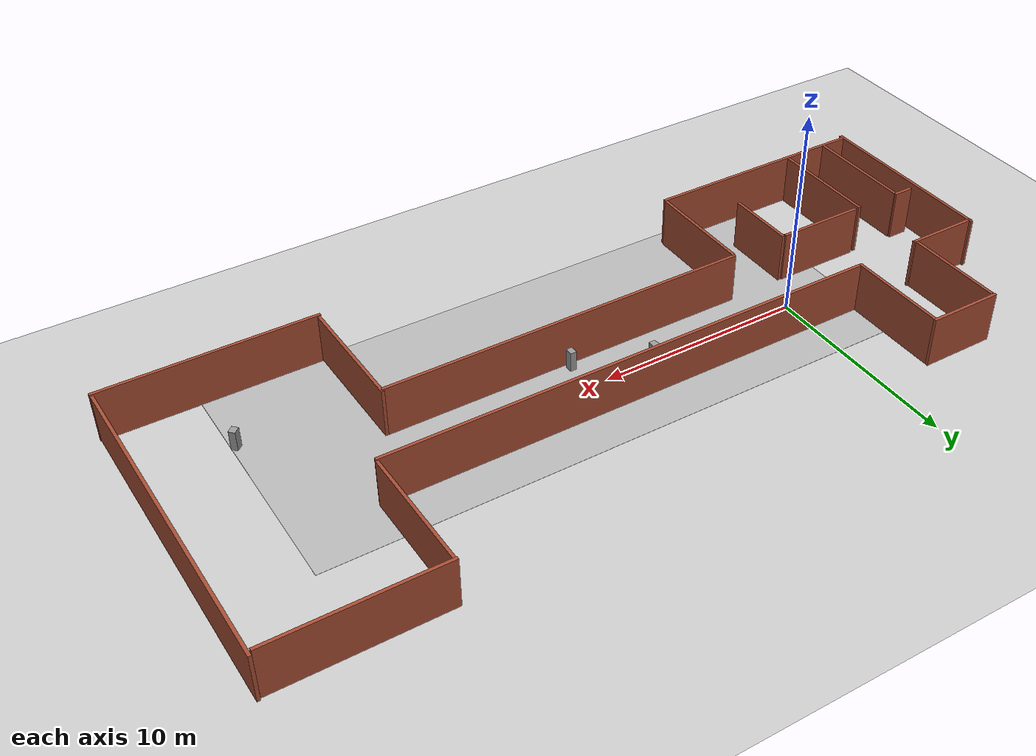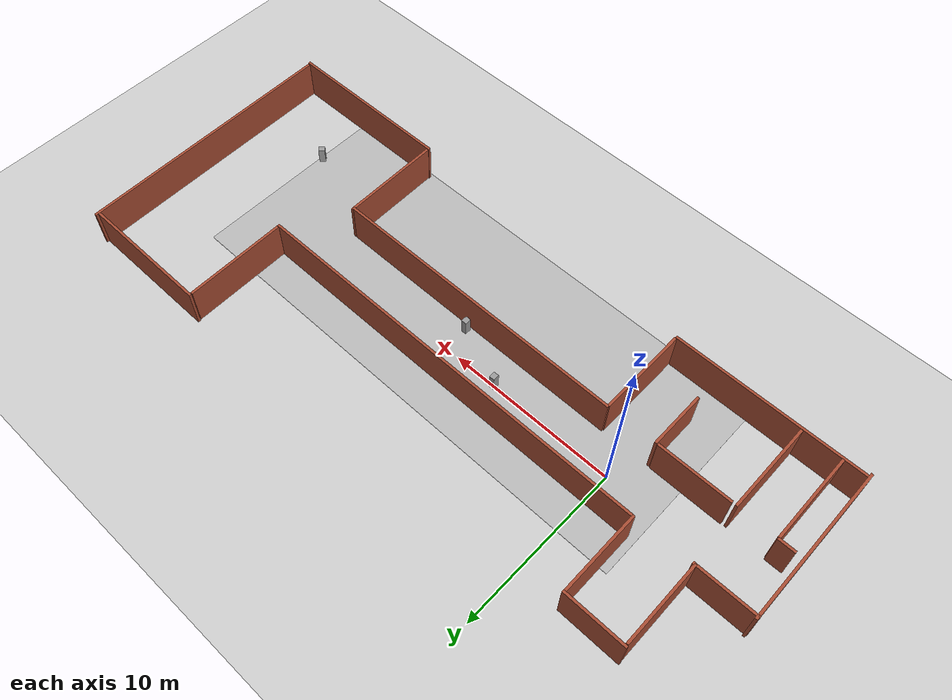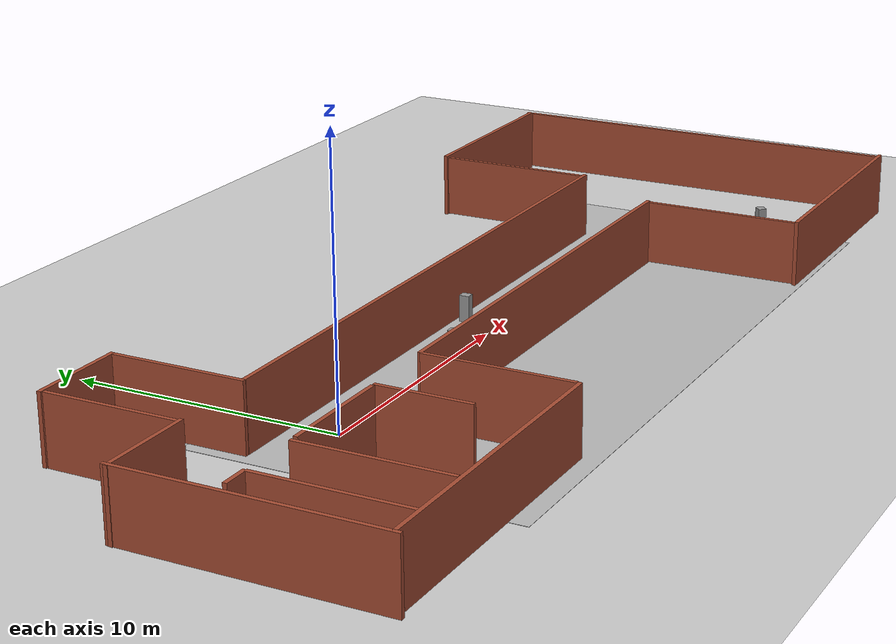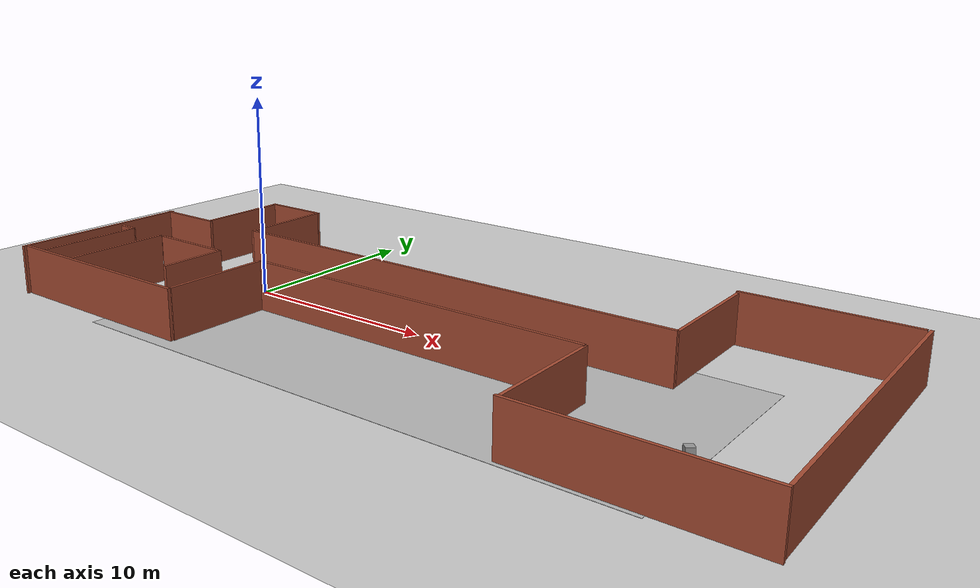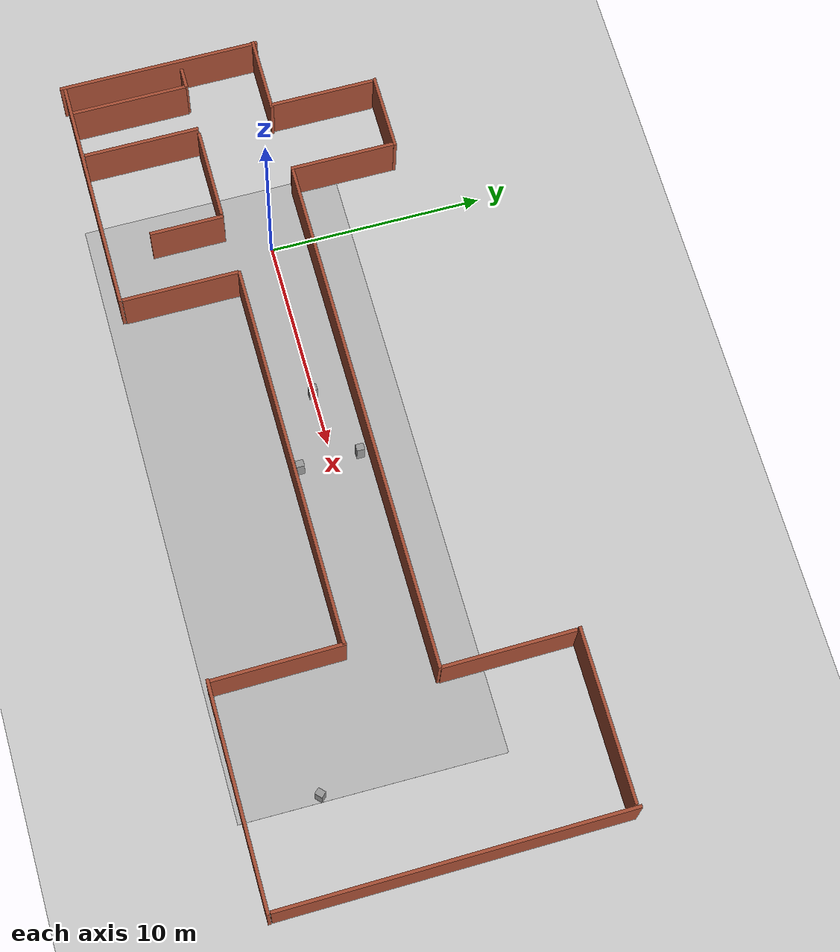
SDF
<sdf version="1.7">
 <world name="default">
  <light name="sun" type="directional">
   <pose>0 0 10 0 -0 0</pose>
   <diffuse>0.8 0.8 0.8 1</diffuse>
   <specular>0.1 0.1 0.1 1</specular>
   <attenuation>
    <range>1000</range>
    <constant>0.9</constant>
    <linear>0.01</linear>
    <quadratic>0.001</quadratic>
   </attenuation>
   <direction>-0.5 0.5 -1</direction>
   <spot><inner_angle>0</inner_angle><outer_angle>0</outer_angle><falloff>0</falloff></spot>
  </light>
  <model name="ground_plane">
   <static>1</static>
   <link name="link">
    <collision name="collision">
     <geometry><plane><normal>0 0 1</normal><size>100 100</size></plane></geometry>
     <surface><friction><ode><mu>100</mu><mu2>50</mu2></ode></friction></surface>
    </collision>
    <visual name="visual">
     <cast_shadows>0</cast_shadows>
     <geometry><plane><normal>0 0 1</normal><size>100 100</size></plane></geometry>
     <material>
      <script><uri>file://media/materials/scripts/gazebo.material</uri><name>Gazebo/Grey</name></script>
     </material>
    </visual>
   </link>
  </model>
  <gravity>0 0 -9.8</gravity>
  <magnetic_field>6e-06 2.3e-05 -4.2e-05</magnetic_field>
  <atmosphere type="adiabatic"/>
  <physics name="default_physics" default="0" type="ode">
   <max_step_size>0.001</max_step_size>
   <real_time_factor>1</real_time_factor>
   <real_time_update_rate>1000</real_time_update_rate>
  </physics>
  <scene><ambient>0.4 0.4 0.4 1</ambient><background>0.7 0.7 0.7 1</background><shadows>1</shadows></scene>
  <spherical_coordinates>
   <surface_model>EARTH_WGS84</surface_model>
   <latitude_deg>0</latitude_deg>
   <longitude_deg>0</longitude_deg>
   <elevation>0</elevation>
   <heading_deg>0</heading_deg>
  </spherical_coordinates>
  <audio><device>default</device></audio>
  <model name="my_ground_plane_0">
   <static>1</static>
   <link name="link">
    <collision name="collision">
     <geometry><plane><normal>0 0 1</normal><size>28.8 12</size></plane></geometry>
     <surface><friction><ode><mu>100</mu><mu2>50</mu2></ode></friction></surface>
    </collision>
    <visual name="visual">
     <cast_shadows>0</cast_shadows>
     <geometry><plane><normal>0 0 1</normal><size>28.8 12</size></plane></geometry>
     <material>
      <script>
       <uri>model://my_ground_plane/materials/scripts</uri>
       <uri>model://my_ground_plane/materials/textures/</uri>
       <name>MyGroundPlane/Image</name>
      </script>
     </material>
    </visual>
   </link>
   <pose>11.2785 -2.18868 0 0 -0 0</pose>
  </model>
  <light name="user_directional_light_0" type="directional">
   <pose>11.0345 -13.0266 1 0 -0 0</pose>
   <diffuse>0.5 0.5 0.5 1</diffuse>
   <specular>0.1 0.1 0.1 1</specular>
   <direction>0.1 0.1 -0.9</direction>
   <attenuation>
    <range>20</range>
    <constant>0.5</constant>
    <linear>0.01</linear>
    <quadratic>0.001</quadratic>
   </attenuation>
   <spot><inner_angle>0</inner_angle><outer_angle>0</outer_angle><falloff>0</falloff></spot>
  </light>
  <light name="user_directional_light_1" type="directional">
   <pose>11.0023 9.1288 1 0 -0 0</pose>
   <diffuse>0.5 0.5 0.5 1</diffuse>
   <specular>0.1 0.1 0.1 1</specular>
   <direction>0.1 0.1 -0.9</direction>
   <attenuation>
    <range>20</range>
    <constant>0.5</constant>
    <linear>0.01</linear>
    <quadratic>0.001</quadratic>
   </attenuation>
   <spot><inner_angle>0</inner_angle><outer_angle>0</outer_angle><falloff>0</falloff></spot>
  </light>
  <model name="first_box_0">
   <link name="link">
    <inertial>
     <mass>0.118815</mass>
     <inertia>
      <ixx>0.011267</ixx>
      <ixy>0</ixy>
      <ixz>0</ixz>
      <iyy>0.0109849</iyy>
      <iyz>0</iyz>
      <izz>0.00244943</izz>
     </inertia>
    </inertial>
    <visual name="visual">
     <geometry><box><size>0.319958 0.371401 1</size></box></geometry>
     <material>
      <script><name>Gazebo/Grey</name><uri>file://media/materials/scripts/gazebo.material</uri></script>
      <shader type="pixel"><normal_map>__default__</normal_map></shader>
     </material>
    </visual>
    <collision name="collision">
     <geometry><box><size>0.330829 0.371401 1</size></box></geometry>
     <surface>
      <friction>
       <ode><mu>1</mu><mu2>1</mu2><fdir1>0 0 0</fdir1><slip1>0</slip1><slip2>0</slip2></ode>
       <torsional>
        <coefficient>1</coefficient>
        <patch_radius>0</patch_radius>
        <surface_radius>0</surface_radius>
        <use_patch_radius>1</use_patch_radius>
        <ode><slip>0</slip></ode>
       </torsional>
      </friction>
      <bounce><restitution_coefficient>0</restitution_coefficient><threshold>1e+06</threshold></bounce>
      <contact>
       <collide_without_contact>0</collide_without_contact>
       <collide_without_contact_bitmask>1</collide_without_contact_bitmask>
       <collide_bitmask>1</collide_bitmask>
       <ode>
        <soft_cfm>0</soft_cfm>
        <soft_erp>0.2</soft_erp>
        <kp>1e+13</kp>
        <kd>1</kd>
        <max_vel>0.01</max_vel>
        <min_depth>0</min_depth>
       </ode>
       <bullet>
        <split_impulse>1</split_impulse>
        <split_impulse_penetration_threshold>-0.01</split_impulse_penetration_threshold>
        <soft_cfm>0</soft_cfm>
        <soft_erp>0.2</soft_erp>
        <kp>1e+13</kp>
        <kd>1</kd>
       </bullet>
      </contact>
     </surface>
    </collision>
   </link>
   <static>0</static>
   <pose>7.54336 -0.032329 0.500001 -5e-06 -1e-06 0.000195</pose>
  </model>
  <model name="first_box_0_clone">
   <link name="link">
    <inertial>
     <mass>0.118815</mass>
     <inertia>
      <ixx>0.011267</ixx>
      <ixy>0</ixy>
      <ixz>0</ixz>
      <iyy>0.0109849</iyy>
      <iyz>0</iyz>
      <izz>0.00244943</izz>
     </inertia>
    </inertial>
    <visual name="visual">
     <geometry><box><size>0.319958 0.371401 1</size></box></geometry>
     <material>
      <script><name>Gazebo/Grey</name><uri>file://media/materials/scripts/gazebo.material</uri></script>
      <shader type="pixel"><normal_map>__default__</normal_map></shader>
     </material>
    </visual>
    <collision name="collision">
     <geometry><box><size>0.330829 0.371401 1</size></box></geometry>
     <surface>
      <friction>
       <ode><mu>1</mu><mu2>1</mu2><fdir1>0 0 0</fdir1><slip1>0</slip1><slip2>0</slip2></ode>
       <torsional>
        <coefficient>1</coefficient>
        <patch_radius>0</patch_radius>
        <surface_radius>0</surface_radius>
        <use_patch_radius>1</use_patch_radius>
        <ode><slip>0</slip></ode>
       </torsional>
      </friction>
      <bounce><restitution_coefficient>0</restitution_coefficient><threshold>1e+06</threshold></bounce>
      <contact>
       <collide_without_contact>0</collide_without_contact>
       <collide_without_contact_bitmask>1</collide_without_contact_bitmask>
       <collide_bitmask>1</collide_bitmask>
       <ode>
        <soft_cfm>0</soft_cfm>
        <soft_erp>0.2</soft_erp>
        <kp>1e+13</kp>
        <kd>1</kd>
        <max_vel>0.01</max_vel>
        <min_depth>0</min_depth>
       </ode>
       <bullet>
        <split_impulse>1</split_impulse>
        <split_impulse_penetration_threshold>-0.01</split_impulse_penetration_threshold>
        <soft_cfm>0</soft_cfm>
        <soft_erp>0.2</soft_erp>
        <kp>1e+13</kp>
        <kd>1</kd>
       </bullet>
      </contact>
     </surface>
    </collision>
   </link>
   <static>0</static>
   <pose>10.8644 1.26843 0.5 -1e-06 0 0.000209</pose>
  </model>
  <model name="first_box_0_clone_0">
   <link name="link">
    <inertial>
     <mass>0.118815</mass>
     <inertia>
      <ixx>0.011267</ixx>
      <ixy>0</ixy>
      <ixz>0</ixz>
      <iyy>0.0109849</iyy>
      <iyz>0</iyz>
      <izz>0.00244943</izz>
     </inertia>
    </inertial>
    <visual name="visual">
     <geometry><box><size>0.319958 0.371401 1</size></box></geometry>
     <material>
      <script><name>Gazebo/Grey</name><uri>file://media/materials/scripts/gazebo.material</uri></script>
      <shader type="pixel"><normal_map>__default__</normal_map></shader>
     </material>
    </visual>
    <collision name="collision">
     <geometry><box><size>0.330829 0.371401 1</size></box></geometry>
     <surface>
      <friction>
       <ode><mu>1</mu><mu2>1</mu2><fdir1>0 0 0</fdir1><slip1>0</slip1><slip2>0</slip2></ode>
       <torsional>
        <coefficient>1</coefficient>
        <patch_radius>0</patch_radius>
        <surface_radius>0</surface_radius>
        <use_patch_radius>1</use_patch_radius>
        <ode><slip>0</slip></ode>
       </torsional>
      </friction>
      <bounce><restitution_coefficient>0</restitution_coefficient><threshold>1e+06</threshold></bounce>
      <contact>
       <collide_without_contact>0</collide_without_contact>
       <collide_without_contact_bitmask>1</collide_without_contact_bitmask>
       <collide_bitmask>1</collide_bitmask>
       <ode>
        <soft_cfm>0</soft_cfm>
        <soft_erp>0.2</soft_erp>
        <kp>1e+13</kp>
        <kd>1</kd>
        <max_vel>0.01</max_vel>
        <min_depth>0</min_depth>
       </ode>
       <bullet>
        <split_impulse>1</split_impulse>
        <split_impulse_penetration_threshold>-0.01</split_impulse_penetration_threshold>
        <soft_cfm>0</soft_cfm>
        <soft_erp>0.2</soft_erp>
        <kp>1e+13</kp>
        <kd>1</kd>
       </bullet>
      </contact>
     </surface>
    </collision>
   </link>
   <static>0</static>
   <pose>10.9218 -1.53465 0.499999 4e-06 1e-06 0.00011</pose>
  </model>
  <model name="first_box_0_clone_1">
   <link name="link">
    <inertial>
     <mass>0.118815</mass>
     <inertia>
      <ixx>0.011267</ixx>
      <ixy>0</ixy>
      <ixz>0</ixz>
      <iyy>0.0109849</iyy>
      <iyz>0</iyz>
      <izz>0.00244943</izz>
     </inertia>
    </inertial>
    <visual name="visual">
     <geometry><box><size>0.319958 0.371401 1</size></box></geometry>
     <material>
      <script><name>Gazebo/Grey</name><uri>file://media/materials/scripts/gazebo.material</uri></script>
      <shader type="pixel"><normal_map>__default__</normal_map></shader>
     </material>
    </visual>
    <collision name="collision">
     <geometry><box><size>0.330829 0.371401 1</size></box></geometry>
     <surface>
      <friction>
       <ode><mu>1</mu><mu2>1</mu2><fdir1>0 0 0</fdir1><slip1>0</slip1><slip2>0</slip2></ode>
       <torsional>
        <coefficient>1</coefficient>
        <patch_radius>0</patch_radius>
        <surface_radius>0</surface_radius>
        <use_patch_radius>1</use_patch_radius>
        <ode><slip>0</slip></ode>
       </torsional>
      </friction>
      <bounce><restitution_coefficient>0</restitution_coefficient><threshold>1e+06</threshold></bounce>
      <contact>
       <collide_without_contact>0</collide_without_contact>
       <collide_without_contact_bitmask>1</collide_without_contact_bitmask>
       <collide_bitmask>1</collide_bitmask>
       <ode>
        <soft_cfm>0</soft_cfm>
        <soft_erp>0.2</soft_erp>
        <kp>1e+13</kp>
        <kd>1</kd>
        <max_vel>0.01</max_vel>
        <min_depth>0</min_depth>
       </ode>
       <bullet>
        <split_impulse>1</split_impulse>
        <split_impulse_penetration_threshold>-0.01</split_impulse_penetration_threshold>
        <soft_cfm>0</soft_cfm>
        <soft_erp>0.2</soft_erp>
        <kp>1e+13</kp>
        <kd>1</kd>
       </bullet>
      </contact>
     </surface>
    </collision>
   </link>
   <static>0</static>
   <pose>25.4581 -4.48846 0.499997 2e-06 2e-06 -0.814201</pose>
  </model>
  <model name="SOC">
   <link name="Wall_10">
    <pose>-1.03849 0.704536 0 0 -0 0</pose>
    <inertial>
     <inertia><ixx>0</ixx><ixy>0</ixy><ixz>0</ixz><iyy>0</iyy><iyz>0</iyz><izz>0</izz></inertia>
     <mass>0</mass>
    </inertial>
    <visual name="Wall_10_Visual">
     <pose>0 0 1.25 0 -0 0</pose>
     <geometry><box><size>18.0615 0.15 2.5</size></box></geometry>
     <material>
      <script><uri>file://media/materials/scripts/gazebo.material</uri><name>Gazebo/Bricks</name></script>
      <ambient>1 1 1 1</ambient>
      <shader type="pixel"/>
     </material>
     <meta><layer>0</layer></meta>
    </visual>
    <collision name="Wall_10_Collision">
     <pose>0 0 1.25 0 -0 0</pose>
     <geometry><box><size>18.0615 0.15 2.5</size></box></geometry>
     <surface>
      <friction>
       <ode><mu>1</mu><mu2>1</mu2><fdir1>0 0 0</fdir1><slip1>0</slip1><slip2>0</slip2></ode>
       <torsional>
        <coefficient>1</coefficient>
        <patch_radius>0</patch_radius>
        <surface_radius>0</surface_radius>
        <use_patch_radius>1</use_patch_radius>
        <ode><slip>0</slip></ode>
       </torsional>
      </friction>
      <bounce><restitution_coefficient>0</restitution_coefficient><threshold>1e+06</threshold></bounce>
      <contact>
       <collide_without_contact>0</collide_without_contact>
       <collide_without_contact_bitmask>1</collide_without_contact_bitmask>
       <collide_bitmask>1</collide_bitmask>
       <ode>
        <soft_cfm>0</soft_cfm>
        <soft_erp>0.2</soft_erp>
        <kp>1e+13</kp>
        <kd>1</kd>
        <max_vel>0.01</max_vel>
        <min_depth>0</min_depth>
       </ode>
       <bullet>
        <split_impulse>1</split_impulse>
        <split_impulse_penetration_threshold>-0.01</split_impulse_penetration_threshold>
        <soft_cfm>0</soft_cfm>
        <soft_erp>0.2</soft_erp>
        <kp>1e+13</kp>
        <kd>1</kd>
       </bullet>
      </contact>
     </surface>
    </collision>
   </link>
   <link name="Wall_10_clone">
    <pose>-15.6498 -4.82376 0 0 -0 0</pose>
    <inertial>
     <inertia><ixx>0</ixx><ixy>0</ixy><ixz>0</ixz><iyy>0</iyy><iyz>0</iyz><izz>0</izz></inertia>
     <mass>0</mass>
    </inertial>
    <visual name="Wall_10_Visual">
     <pose>0 0 1.25 0 -0 0</pose>
     <geometry><box><size>11.2779 0.15 2.5</size></box></geometry>
     <material>
      <script><uri>file://media/materials/scripts/gazebo.material</uri><name>Gazebo/Bricks</name></script>
      <ambient>1 1 1 1</ambient>
      <shader type="pixel"/>
     </material>
     <meta><layer>0</layer></meta>
    </visual>
    <collision name="Wall_10_Collision">
     <pose>0 0 1.25 0 -0 0</pose>
     <geometry><box><size>11.2779 0.15 2.5</size></box></geometry>
     <surface>
      <friction>
       <ode><mu>1</mu><mu2>1</mu2><fdir1>0 0 0</fdir1><slip1>0</slip1><slip2>0</slip2></ode>
       <torsional>
        <coefficient>1</coefficient>
        <patch_radius>0</patch_radius>
        <surface_radius>0</surface_radius>
        <use_patch_radius>1</use_patch_radius>
        <ode><slip>0</slip></ode>
       </torsional>
      </friction>
      <bounce><restitution_coefficient>0</restitution_coefficient><threshold>1e+06</threshold></bounce>
      <contact>
       <collide_without_contact>0</collide_without_contact>
       <collide_without_contact_bitmask>1</collide_without_contact_bitmask>
       <collide_bitmask>1</collide_bitmask>
       <ode>
        <soft_cfm>0</soft_cfm>
        <soft_erp>0.2</soft_erp>
        <kp>1e+13</kp>
        <kd>1</kd>
        <max_vel>0.01</max_vel>
        <min_depth>0</min_depth>
       </ode>
       <bullet>
        <split_impulse>1</split_impulse>
        <split_impulse_penetration_threshold>-0.01</split_impulse_penetration_threshold>
        <soft_cfm>0</soft_cfm>
        <soft_erp>0.2</soft_erp>
        <kp>1e+13</kp>
        <kd>1</kd>
       </bullet>
      </contact>
     </surface>
    </collision>
   </link>
   <link name="Wall_10_clone_clone">
    <pose>-15.212 0.646337 0 0 -0 0</pose>
    <inertial>
     <inertia><ixx>0</ixx><ixy>0</ixy><ixz>0</ixz><iyy>0</iyy><iyz>0</iyz><izz>0</izz></inertia>
     <mass>0</mass>
    </inertial>
    <visual name="Wall_10_Visual">
     <pose>0 0 1.25 0 -0 0</pose>
     <geometry><box><size>4.31507 0.15 2.5</size></box></geometry>
     <material>
      <script><uri>file://media/materials/scripts/gazebo.material</uri><name>Gazebo/Bricks</name></script>
      <ambient>1 1 1 1</ambient>
      <shader type="pixel"/>
     </material>
     <meta><layer>0</layer></meta>
    </visual>
    <collision name="Wall_10_Collision">
     <pose>0 0 1.25 0 -0 0</pose>
     <geometry><box><size>4.31507 0.15 2.5</size></box></geometry>
     <surface>
      <friction>
       <ode><mu>1</mu><mu2>1</mu2><fdir1>0 0 0</fdir1><slip1>0</slip1><slip2>0</slip2></ode>
       <torsional>
        <coefficient>1</coefficient>
        <patch_radius>0</patch_radius>
        <surface_radius>0</surface_radius>
        <use_patch_radius>1</use_patch_radius>
        <ode><slip>0</slip></ode>
       </torsional>
      </friction>
      <bounce><restitution_coefficient>0</restitution_coefficient><threshold>1e+06</threshold></bounce>
      <contact>
       <collide_without_contact>0</collide_without_contact>
       <collide_without_contact_bitmask>1</collide_without_contact_bitmask>
       <collide_bitmask>1</collide_bitmask>
       <ode>
        <soft_cfm>0</soft_cfm>
        <soft_erp>0.2</soft_erp>
        <kp>1e+13</kp>
        <kd>1</kd>
        <max_vel>0.01</max_vel>
        <min_depth>0</min_depth>
       </ode>
       <bullet>
        <split_impulse>1</split_impulse>
        <split_impulse_penetration_threshold>-0.01</split_impulse_penetration_threshold>
        <soft_cfm>0</soft_cfm>
        <soft_erp>0.2</soft_erp>
        <kp>1e+13</kp>
        <kd>1</kd>
       </bullet>
      </contact>
     </surface>
    </collision>
   </link>
   <link name="Wall_10_clone_clone_clone">
    <pose>-20.376 0.6718 0 0 -0 0</pose>
    <inertial>
     <inertia><ixx>0</ixx><ixy>0</ixy><ixz>0</ixz><iyy>0</iyy><iyz>0</iyz><izz>0</izz></inertia>
     <mass>0</mass>
    </inertial>
    <visual name="Wall_10_Visual">
     <pose>0 0 1.25 0 -0 0</pose>
     <geometry><box><size>0.991707 0.15 2.5</size></box></geometry>
     <material>
      <script><uri>file://media/materials/scripts/gazebo.material</uri><name>Gazebo/Bricks</name></script>
      <ambient>1 1 1 1</ambient>
      <shader type="pixel"/>
     </material>
     <meta><layer>0</layer></meta>
    </visual>
    <collision name="Wall_10_Collision">
     <pose>0 0 1.25 0 -0 0</pose>
     <geometry><box><size>0.991707 0.15 2.5</size></box></geometry>
     <surface>
      <friction>
       <ode><mu>1</mu><mu2>1</mu2><fdir1>0 0 0</fdir1><slip1>0</slip1><slip2>0</slip2></ode>
       <torsional>
        <coefficient>1</coefficient>
        <patch_radius>0</patch_radius>
        <surface_radius>0</surface_radius>
        <use_patch_radius>1</use_patch_radius>
        <ode><slip>0</slip></ode>
       </torsional>
      </friction>
      <bounce><restitution_coefficient>0</restitution_coefficient><threshold>1e+06</threshold></bounce>
      <contact>
       <collide_without_contact>0</collide_without_contact>
       <collide_without_contact_bitmask>1</collide_without_contact_bitmask>
       <collide_bitmask>1</collide_bitmask>
       <ode>
        <soft_cfm>0</soft_cfm>
        <soft_erp>0.2</soft_erp>
        <kp>1e+13</kp>
        <kd>1</kd>
        <max_vel>0.01</max_vel>
        <min_depth>0</min_depth>
       </ode>
       <bullet>
        <split_impulse>1</split_impulse>
        <split_impulse_penetration_threshold>-0.01</split_impulse_penetration_threshold>
        <soft_cfm>0</soft_cfm>
        <soft_erp>0.2</soft_erp>
        <kp>1e+13</kp>
        <kd>1</kd>
       </bullet>
      </contact>
     </surface>
    </collision>
   </link>
   <link name="Wall_10_clone_clone_clone_0">
    <pose>-2.16879 4.3569 0 0 -0 0</pose>
    <inertial>
     <inertia><ixx>0</ixx><ixy>0</ixy><ixz>0</ixz><iyy>0</iyy><iyz>0</iyz><izz>0</izz></inertia>
     <mass>0</mass>
    </inertial>
    <visual name="Wall_10_Visual">
     <pose>0 0 1.25 0 -0 0</pose>
     <geometry><box><size>24.5035 0.15 2.5</size></box></geometry>
     <material>
      <script><uri>file://media/materials/scripts/gazebo.material</uri><name>Gazebo/Bricks</name></script>
      <ambient>1 1 1 1</ambient>
      <shader type="pixel"/>
     </material>
     <meta><layer>0</layer></meta>
    </visual>
    <collision name="Wall_10_Collision">
     <pose>0 0 1.25 0 -0 0</pose>
     <geometry><box><size>24.5035 0.15 2.5</size></box></geometry>
     <surface>
      <friction>
       <ode><mu>1</mu><mu2>1</mu2><fdir1>0 0 0</fdir1><slip1>0</slip1><slip2>0</slip2></ode>
       <torsional>
        <coefficient>1</coefficient>
        <patch_radius>0</patch_radius>
        <surface_radius>0</surface_radius>
        <use_patch_radius>1</use_patch_radius>
        <ode><slip>0</slip></ode>
       </torsional>
      </friction>
      <bounce><restitution_coefficient>0</restitution_coefficient><threshold>1e+06</threshold></bounce>
      <contact>
       <collide_without_contact>0</collide_without_contact>
       <collide_without_contact_bitmask>1</collide_without_contact_bitmask>
       <collide_bitmask>1</collide_bitmask>
       <ode>
        <soft_cfm>0</soft_cfm>
        <soft_erp>0.2</soft_erp>
        <kp>1e+13</kp>
        <kd>1</kd>
        <max_vel>0.01</max_vel>
        <min_depth>0</min_depth>
       </ode>
       <bullet>
        <split_impulse>1</split_impulse>
        <split_impulse_penetration_threshold>-0.01</split_impulse_penetration_threshold>
        <soft_cfm>0</soft_cfm>
        <soft_erp>0.2</soft_erp>
        <kp>1e+13</kp>
        <kd>1</kd>
       </bullet>
      </contact>
     </surface>
    </collision>
   </link>
   <link name="Wall_10_clone_clone_clone_1">
    <pose>-16.2134 9.24716 0 0 -0 0</pose>
    <inertial>
     <inertia><ixx>0</ixx><ixy>0</ixy><ixz>0</ixz><iyy>0</iyy><iyz>0</iyz><izz>0</izz></inertia>
     <mass>0</mass>
    </inertial>
    <visual name="Wall_10_Visual">
     <pose>0 0 1.25 0 -0 0</pose>
     <geometry><box><size>3.62714 0.15 2.5</size></box></geometry>
     <material>
      <script><uri>file://media/materials/scripts/gazebo.material</uri><name>Gazebo/Bricks</name></script>
      <ambient>1 1 1 1</ambient>
      <shader type="pixel"/>
     </material>
     <meta><layer>0</layer></meta>
    </visual>
    <collision name="Wall_10_Collision">
     <pose>0 0 1.25 0 -0 0</pose>
     <geometry><box><size>3.62714 0.15 2.5</size></box></geometry>
     <surface>
      <friction>
       <ode><mu>1</mu><mu2>1</mu2><fdir1>0 0 0</fdir1><slip1>0</slip1><slip2>0</slip2></ode>
       <torsional>
        <coefficient>1</coefficient>
        <patch_radius>0</patch_radius>
        <surface_radius>0</surface_radius>
        <use_patch_radius>1</use_patch_radius>
        <ode><slip>0</slip></ode>
       </torsional>
      </friction>
      <bounce><restitution_coefficient>0</restitution_coefficient><threshold>1e+06</threshold></bounce>
      <contact>
       <collide_without_contact>0</collide_without_contact>
       <collide_without_contact_bitmask>1</collide_without_contact_bitmask>
       <collide_bitmask>1</collide_bitmask>
       <ode>
        <soft_cfm>0</soft_cfm>
        <soft_erp>0.2</soft_erp>
        <kp>1e+13</kp>
        <kd>1</kd>
        <max_vel>0.01</max_vel>
        <min_depth>0</min_depth>
       </ode>
       <bullet>
        <split_impulse>1</split_impulse>
        <split_impulse_penetration_threshold>-0.01</split_impulse_penetration_threshold>
        <soft_cfm>0</soft_cfm>
        <soft_erp>0.2</soft_erp>
        <kp>1e+13</kp>
        <kd>1</kd>
       </bullet>
      </contact>
     </surface>
    </collision>
   </link>
   <link name="Wall_10_clone_clone_clone_1_clone">
    <pose>-19.5868 4.25073 0 0 -0 0</pose>
    <inertial>
     <inertia><ixx>0</ixx><ixy>0</ixy><ixz>0</ixz><iyy>0</iyy><iyz>0</iyz><izz>0</izz></inertia>
     <mass>0</mass>
    </inertial>
    <visual name="Wall_10_Visual">
     <pose>0 0 1.25 0 -0 0</pose>
     <geometry><box><size>3.62714 0.15 2.5</size></box></geometry>
     <material>
      <script><uri>file://media/materials/scripts/gazebo.material</uri><name>Gazebo/Bricks</name></script>
      <ambient>1 1 1 1</ambient>
      <shader type="pixel"/>
     </material>
     <meta><layer>0</layer></meta>
    </visual>
    <collision name="Wall_10_Collision">
     <pose>0 0 1.25 0 -0 0</pose>
     <geometry><box><size>3.62714 0.15 2.5</size></box></geometry>
     <surface>
      <friction>
       <ode><mu>1</mu><mu2>1</mu2><fdir1>0 0 0</fdir1><slip1>0</slip1><slip2>0</slip2></ode>
       <torsional>
        <coefficient>1</coefficient>
        <patch_radius>0</patch_radius>
        <surface_radius>0</surface_radius>
        <use_patch_radius>1</use_patch_radius>
        <ode><slip>0</slip></ode>
       </torsional>
      </friction>
      <bounce><restitution_coefficient>0</restitution_coefficient><threshold>1e+06</threshold></bounce>
      <contact>
       <collide_without_contact>0</collide_without_contact>
       <collide_without_contact_bitmask>1</collide_without_contact_bitmask>
       <collide_bitmask>1</collide_bitmask>
       <ode>
        <soft_cfm>0</soft_cfm>
        <soft_erp>0.2</soft_erp>
        <kp>1e+13</kp>
        <kd>1</kd>
        <max_vel>0.01</max_vel>
        <min_depth>0</min_depth>
       </ode>
       <bullet>
        <split_impulse>1</split_impulse>
        <split_impulse_penetration_threshold>-0.01</split_impulse_penetration_threshold>
        <soft_cfm>0</soft_cfm>
        <soft_erp>0.2</soft_erp>
        <kp>1e+13</kp>
        <kd>1</kd>
       </bullet>
      </contact>
     </surface>
    </collision>
   </link>
   <link name="Wall_20_clone">
    <pose>8.02593 -2.23081 0 0 -0 1.58423</pose>
    <inertial>
     <inertia><ixx>0</ixx><ixy>0</ixy><ixz>0</ixz><iyy>0</iyy><iyz>0</iyz><izz>0</izz></inertia>
     <mass>0</mass>
    </inertial>
    <visual name="Wall_20_Visual">
     <pose>0 0 1.25 0 -0 0</pose>
     <geometry><box><size>6.0811 0.15 2.39214</size></box></geometry>
     <material>
      <script><uri>file://media/materials/scripts/gazebo.material</uri><name>Gazebo/Bricks</name></script>
      <ambient>1 1 1 1</ambient>
      <shader type="pixel"/>
     </material>
     <meta><layer>0</layer></meta>
    </visual>
    <collision name="Wall_20_Collision">
     <pose>0 0 1.25 0 -0 0</pose>
     <geometry><box><size>6.0811 0.15 2.39214</size></box></geometry>
     <surface>
      <friction>
       <ode><mu>1</mu><mu2>1</mu2><fdir1>0 0 0</fdir1><slip1>0</slip1><slip2>0</slip2></ode>
       <torsional>
        <coefficient>1</coefficient>
        <patch_radius>0</patch_radius>
        <surface_radius>0</surface_radius>
        <use_patch_radius>1</use_patch_radius>
        <ode><slip>0</slip></ode>
       </torsional>
      </friction>
      <bounce><restitution_coefficient>0</restitution_coefficient><threshold>1e+06</threshold></bounce>
      <contact>
       <collide_without_contact>0</collide_without_contact>
       <collide_without_contact_bitmask>1</collide_without_contact_bitmask>
       <collide_bitmask>1</collide_bitmask>
       <ode>
        <soft_cfm>0</soft_cfm>
        <soft_erp>0.2</soft_erp>
        <kp>1e+13</kp>
        <kd>1</kd>
        <max_vel>0.01</max_vel>
        <min_depth>0</min_depth>
       </ode>
       <bullet>
        <split_impulse>1</split_impulse>
        <split_impulse_penetration_threshold>-0.01</split_impulse_penetration_threshold>
        <soft_cfm>0</soft_cfm>
        <soft_erp>0.2</soft_erp>
        <kp>1e+13</kp>
        <kd>1</kd>
       </bullet>
      </contact>
     </surface>
    </collision>
   </link>
   <link name="Wall_20_clone_1_clone">
    <pose>18.0365 2.81245 0 0 -0 1.58423</pose>
    <inertial>
     <inertia><ixx>0</ixx><ixy>0</ixy><ixz>0</ixz><iyy>0</iyy><iyz>0</iyz><izz>0</izz></inertia>
     <mass>0</mass>
    </inertial>
    <visual name="Wall_20_Visual">
     <pose>0 0 1.25 0 -0 0</pose>
     <geometry><box><size>16.0091 0.15 2.39214</size></box></geometry>
     <material>
      <script><uri>file://media/materials/scripts/gazebo.material</uri><name>Gazebo/Bricks</name></script>
      <ambient>1 1 1 1</ambient>
      <shader type="pixel"/>
     </material>
     <meta><layer>0</layer></meta>
    </visual>
    <collision name="Wall_20_Collision">
     <pose>0 0 1.25 0 -0 0</pose>
     <geometry><box><size>16.0091 0.15 2.39214</size></box></geometry>
     <surface>
      <friction>
       <ode><mu>1</mu><mu2>1</mu2><fdir1>0 0 0</fdir1><slip1>0</slip1><slip2>0</slip2></ode>
       <torsional>
        <coefficient>1</coefficient>
        <patch_radius>0</patch_radius>
        <surface_radius>0</surface_radius>
        <use_patch_radius>1</use_patch_radius>
        <ode><slip>0</slip></ode>
       </torsional>
      </friction>
      <bounce><restitution_coefficient>0</restitution_coefficient><threshold>1e+06</threshold></bounce>
      <contact>
       <collide_without_contact>0</collide_without_contact>
       <collide_without_contact_bitmask>1</collide_without_contact_bitmask>
       <collide_bitmask>1</collide_bitmask>
       <ode>
        <soft_cfm>0</soft_cfm>
        <soft_erp>0.2</soft_erp>
        <kp>1e+13</kp>
        <kd>1</kd>
        <max_vel>0.01</max_vel>
        <min_depth>0</min_depth>
       </ode>
       <bullet>
        <split_impulse>1</split_impulse>
        <split_impulse_penetration_threshold>-0.01</split_impulse_penetration_threshold>
        <soft_cfm>0</soft_cfm>
        <soft_erp>0.2</soft_erp>
        <kp>1e+13</kp>
        <kd>1</kd>
       </bullet>
      </contact>
     </surface>
    </collision>
   </link>
   <link name="Wall_20_clone_clone">
    <pose>10.0091 7.44661 0 0 -0 1.58423</pose>
    <inertial>
     <inertia><ixx>0</ixx><ixy>0</ixy><ixz>0</ixz><iyy>0</iyy><iyz>0</iyz><izz>0</izz></inertia>
     <mass>0</mass>
    </inertial>
    <visual name="Wall_20_Visual">
     <pose>0 0 1.25 0 -0 0</pose>
     <geometry><box><size>6.0811 0.15 2.39214</size></box></geometry>
     <material>
      <script><uri>file://media/materials/scripts/gazebo.material</uri><name>Gazebo/Bricks</name></script>
      <ambient>1 1 1 1</ambient>
      <shader type="pixel"/>
     </material>
     <meta><layer>0</layer></meta>
    </visual>
    <collision name="Wall_20_Collision">
     <pose>0 0 1.25 0 -0 0</pose>
     <geometry><box><size>6.0811 0.15 2.39214</size></box></geometry>
     <surface>
      <friction>
       <ode><mu>1</mu><mu2>1</mu2><fdir1>0 0 0</fdir1><slip1>0</slip1><slip2>0</slip2></ode>
       <torsional>
        <coefficient>1</coefficient>
        <patch_radius>0</patch_radius>
        <surface_radius>0</surface_radius>
        <use_patch_radius>1</use_patch_radius>
        <ode><slip>0</slip></ode>
       </torsional>
      </friction>
      <bounce><restitution_coefficient>0</restitution_coefficient><threshold>1e+06</threshold></bounce>
      <contact>
       <collide_without_contact>0</collide_without_contact>
       <collide_without_contact_bitmask>1</collide_without_contact_bitmask>
       <collide_bitmask>1</collide_bitmask>
       <ode>
        <soft_cfm>0</soft_cfm>
        <soft_erp>0.2</soft_erp>
        <kp>1e+13</kp>
        <kd>1</kd>
        <max_vel>0.01</max_vel>
        <min_depth>0</min_depth>
       </ode>
       <bullet>
        <split_impulse>1</split_impulse>
        <split_impulse_penetration_threshold>-0.01</split_impulse_penetration_threshold>
        <soft_cfm>0</soft_cfm>
        <soft_erp>0.2</soft_erp>
        <kp>1e+13</kp>
        <kd>1</kd>
       </bullet>
      </contact>
     </surface>
    </collision>
   </link>
   <link name="Wall_4">
    <pose>-10.0437 -2.03032 0 0 -0 1.5708</pose>
    <inertial>
     <inertia><ixx>0</ixx><ixy>0</ixy><ixz>0</ixz><iyy>0</iyy><iyz>0</iyz><izz>0</izz></inertia>
     <mass>0</mass>
    </inertial>
    <visual name="Wall_4_Visual">
     <pose>0 0 1.25 0 -0 0</pose>
     <geometry><box><size>5.40533 0.15 2.5</size></box></geometry>
     <material>
      <script><uri>file://media/materials/scripts/gazebo.material</uri><name>Gazebo/Bricks</name></script>
      <ambient>1 1 1 1</ambient>
      <shader type="pixel"/>
     </material>
     <meta><layer>0</layer></meta>
    </visual>
    <collision name="Wall_4_Collision">
     <pose>0 0 1.25 0 -0 0</pose>
     <geometry><box><size>5.40533 0.15 2.5</size></box></geometry>
     <surface>
      <friction>
       <ode><mu>1</mu><mu2>1</mu2><fdir1>0 0 0</fdir1><slip1>0</slip1><slip2>0</slip2></ode>
       <torsional>
        <coefficient>1</coefficient>
        <patch_radius>0</patch_radius>
        <surface_radius>0</surface_radius>
        <use_patch_radius>1</use_patch_radius>
        <ode><slip>0</slip></ode>
       </torsional>
      </friction>
      <bounce><restitution_coefficient>0</restitution_coefficient><threshold>1e+06</threshold></bounce>
      <contact>
       <collide_without_contact>0</collide_without_contact>
       <collide_without_contact_bitmask>1</collide_without_contact_bitmask>
       <collide_bitmask>1</collide_bitmask>
       <ode>
        <soft_cfm>0</soft_cfm>
        <soft_erp>0.2</soft_erp>
        <kp>1e+13</kp>
        <kd>1</kd>
        <max_vel>0.01</max_vel>
        <min_depth>0</min_depth>
       </ode>
       <bullet>
        <split_impulse>1</split_impulse>
        <split_impulse_penetration_threshold>-0.01</split_impulse_penetration_threshold>
        <soft_cfm>0</soft_cfm>
        <soft_erp>0.2</soft_erp>
        <kp>1e+13</kp>
        <kd>1</kd>
       </bullet>
      </contact>
     </surface>
    </collision>
   </link>
   <link name="Wall_4_clone">
    <pose>-12.9359 -1.03652 0 0 -0 1.5708</pose>
    <inertial>
     <inertia><ixx>0</ixx><ixy>0</ixy><ixz>0</ixz><iyy>0</iyy><iyz>0</iyz><izz>0</izz></inertia>
     <mass>0</mass>
    </inertial>
    <visual name="Wall_4_Visual">
     <pose>0 0 1.25 0 -0 0</pose>
     <geometry><box><size>3.444 0.15 2.5</size></box></geometry>
     <material>
      <script><uri>file://media/materials/scripts/gazebo.material</uri><name>Gazebo/Bricks</name></script>
      <ambient>1 1 1 1</ambient>
      <shader type="pixel"/>
     </material>
     <meta><layer>0</layer></meta>
    </visual>
    <collision name="Wall_4_Collision">
     <pose>0 0 1.25 0 -0 0</pose>
     <geometry><box><size>3.444 0.15 2.5</size></box></geometry>
     <surface>
      <friction>
       <ode><mu>1</mu><mu2>1</mu2><fdir1>0 0 0</fdir1><slip1>0</slip1><slip2>0</slip2></ode>
       <torsional>
        <coefficient>1</coefficient>
        <patch_radius>0</patch_radius>
        <surface_radius>0</surface_radius>
        <use_patch_radius>1</use_patch_radius>
        <ode><slip>0</slip></ode>
       </torsional>
      </friction>
      <bounce><restitution_coefficient>0</restitution_coefficient><threshold>1e+06</threshold></bounce>
      <contact>
       <collide_without_contact>0</collide_without_contact>
       <collide_without_contact_bitmask>1</collide_without_contact_bitmask>
       <collide_bitmask>1</collide_bitmask>
       <ode>
        <soft_cfm>0</soft_cfm>
        <soft_erp>0.2</soft_erp>
        <kp>1e+13</kp>
        <kd>1</kd>
        <max_vel>0.01</max_vel>
        <min_depth>0</min_depth>
       </ode>
       <bullet>
        <split_impulse>1</split_impulse>
        <split_impulse_penetration_threshold>-0.01</split_impulse_penetration_threshold>
        <soft_cfm>0</soft_cfm>
        <soft_erp>0.2</soft_erp>
        <kp>1e+13</kp>
        <kd>1</kd>
       </bullet>
      </contact>
     </surface>
    </collision>
   </link>
   <link name="Wall_4_clone_0">
    <pose>-17.6061 -2.02399 0 0 -0 1.5708</pose>
    <inertial>
     <inertia><ixx>0</ixx><ixy>0</ixy><ixz>0</ixz><iyy>0</iyy><iyz>0</iyz><izz>0</izz></inertia>
     <mass>0</mass>
    </inertial>
    <visual name="Wall_4_Visual">
     <pose>0 0 1.25 0 -0 0</pose>
     <geometry><box><size>5.40533 0.15 2.5</size></box></geometry>
     <material>
      <script><uri>file://media/materials/scripts/gazebo.material</uri><name>Gazebo/Bricks</name></script>
      <ambient>1 1 1 1</ambient>
      <shader type="pixel"/>
     </material>
     <meta><layer>0</layer></meta>
    </visual>
    <collision name="Wall_4_Collision">
     <pose>0 0 1.25 0 -0 0</pose>
     <geometry><box><size>5.40533 0.15 2.5</size></box></geometry>
     <surface>
      <friction>
       <ode><mu>1</mu><mu2>1</mu2><fdir1>0 0 0</fdir1><slip1>0</slip1><slip2>0</slip2></ode>
       <torsional>
        <coefficient>1</coefficient>
        <patch_radius>0</patch_radius>
        <surface_radius>0</surface_radius>
        <use_patch_radius>1</use_patch_radius>
        <ode><slip>0</slip></ode>
       </torsional>
      </friction>
      <bounce><restitution_coefficient>0</restitution_coefficient><threshold>1e+06</threshold></bounce>
      <contact>
       <collide_without_contact>0</collide_without_contact>
       <collide_without_contact_bitmask>1</collide_without_contact_bitmask>
       <collide_bitmask>1</collide_bitmask>
       <ode>
        <soft_cfm>0</soft_cfm>
        <soft_erp>0.2</soft_erp>
        <kp>1e+13</kp>
        <kd>1</kd>
        <max_vel>0.01</max_vel>
        <min_depth>0</min_depth>
       </ode>
       <bullet>
        <split_impulse>1</split_impulse>
        <split_impulse_penetration_threshold>-0.01</split_impulse_penetration_threshold>
        <soft_cfm>0</soft_cfm>
        <soft_erp>0.2</soft_erp>
        <kp>1e+13</kp>
        <kd>1</kd>
       </bullet>
      </contact>
     </surface>
    </collision>
   </link>
   <link name="Wall_4_clone_0_clone">
    <pose>-19.91 -2.05989 0 0 -0 1.5708</pose>
    <inertial>
     <inertia><ixx>0</ixx><ixy>0</ixy><ixz>0</ixz><iyy>0</iyy><iyz>0</iyz><izz>0</izz></inertia>
     <mass>0</mass>
    </inertial>
    <visual name="Wall_4_Visual">
     <pose>0 0 1.25 0 -0 0</pose>
     <geometry><box><size>5.40533 0.15 2.5</size></box></geometry>
     <material>
      <script><uri>file://media/materials/scripts/gazebo.material</uri><name>Gazebo/Bricks</name></script>
      <ambient>1 1 1 1</ambient>
      <shader type="pixel"/>
     </material>
     <meta><layer>0</layer></meta>
    </visual>
    <collision name="Wall_4_Collision">
     <pose>0 0 1.25 0 -0 0</pose>
     <geometry><box><size>5.40533 0.15 2.5</size></box></geometry>
     <surface>
      <friction>
       <ode><mu>1</mu><mu2>1</mu2><fdir1>0 0 0</fdir1><slip1>0</slip1><slip2>0</slip2></ode>
       <torsional>
        <coefficient>1</coefficient>
        <patch_radius>0</patch_radius>
        <surface_radius>0</surface_radius>
        <use_patch_radius>1</use_patch_radius>
        <ode><slip>0</slip></ode>
       </torsional>
      </friction>
      <bounce><restitution_coefficient>0</restitution_coefficient><threshold>1e+06</threshold></bounce>
      <contact>
       <collide_without_contact>0</collide_without_contact>
       <collide_without_contact_bitmask>1</collide_without_contact_bitmask>
       <collide_bitmask>1</collide_bitmask>
       <ode>
        <soft_cfm>0</soft_cfm>
        <soft_erp>0.2</soft_erp>
        <kp>1e+13</kp>
        <kd>1</kd>
        <max_vel>0.01</max_vel>
        <min_depth>0</min_depth>
       </ode>
       <bullet>
        <split_impulse>1</split_impulse>
        <split_impulse_penetration_threshold>-0.01</split_impulse_penetration_threshold>
        <soft_cfm>0</soft_cfm>
        <soft_erp>0.2</soft_erp>
        <kp>1e+13</kp>
        <kd>1</kd>
       </bullet>
      </contact>
     </surface>
    </collision>
   </link>
   <link name="Wall_4_clone_clone">
    <pose>-21.298 -0.30674 0 0 -0 1.5708</pose>
    <inertial>
     <inertia><ixx>0</ixx><ixy>0</ixy><ixz>0</ixz><iyy>0</iyy><iyz>0</iyz><izz>0</izz></inertia>
     <mass>0</mass>
    </inertial>
    <visual name="Wall_4_Visual">
     <pose>0 0 1.25 0 -0 0</pose>
     <geometry><box><size>9.48761 0.15 2.5</size></box></geometry>
     <material>
      <script><uri>file://media/materials/scripts/gazebo.material</uri><name>Gazebo/Bricks</name></script>
      <ambient>1 1 1 1</ambient>
      <shader type="pixel"/>
     </material>
     <meta><layer>0</layer></meta>
    </visual>
    <collision name="Wall_4_Collision">
     <pose>0 0 1.25 0 -0 0</pose>
     <geometry><box><size>9.48761 0.15 2.5</size></box></geometry>
     <surface>
      <friction>
       <ode><mu>1</mu><mu2>1</mu2><fdir1>0 0 0</fdir1><slip1>0</slip1><slip2>0</slip2></ode>
       <torsional>
        <coefficient>1</coefficient>
        <patch_radius>0</patch_radius>
        <surface_radius>0</surface_radius>
        <use_patch_radius>1</use_patch_radius>
        <ode><slip>0</slip></ode>
       </torsional>
      </friction>
      <bounce><restitution_coefficient>0</restitution_coefficient><threshold>1e+06</threshold></bounce>
      <contact>
       <collide_without_contact>0</collide_without_contact>
       <collide_without_contact_bitmask>1</collide_without_contact_bitmask>
       <collide_bitmask>1</collide_bitmask>
       <ode>
        <soft_cfm>0</soft_cfm>
        <soft_erp>0.2</soft_erp>
        <kp>1e+13</kp>
        <kd>1</kd>
        <max_vel>0.01</max_vel>
        <min_depth>0</min_depth>
       </ode>
       <bullet>
        <split_impulse>1</split_impulse>
        <split_impulse_penetration_threshold>-0.01</split_impulse_penetration_threshold>
        <soft_cfm>0</soft_cfm>
        <soft_erp>0.2</soft_erp>
        <kp>1e+13</kp>
        <kd>1</kd>
       </bullet>
      </contact>
     </surface>
    </collision>
   </link>
   <link name="Wall_4_clone_clone_0">
    <pose>-14.4822 6.74515 0 0 -0 1.5708</pose>
    <inertial>
     <inertia><ixx>0</ixx><ixy>0</ixy><ixz>0</ixz><iyy>0</iyy><iyz>0</iyz><izz>0</izz></inertia>
     <mass>0</mass>
    </inertial>
    <visual name="Wall_4_Visual">
     <pose>0 0 1.25 0 -0 0</pose>
     <geometry><box><size>4.9046 0.15 2.5</size></box></geometry>
     <material>
      <script><uri>file://media/materials/scripts/gazebo.material</uri><name>Gazebo/Bricks</name></script>
      <ambient>1 1 1 1</ambient>
      <shader type="pixel"/>
     </material>
     <meta><layer>0</layer></meta>
    </visual>
    <collision name="Wall_4_Collision">
     <pose>0 0 1.25 0 -0 0</pose>
     <geometry><box><size>4.9046 0.15 2.5</size></box></geometry>
     <surface>
      <friction>
       <ode><mu>1</mu><mu2>1</mu2><fdir1>0 0 0</fdir1><slip1>0</slip1><slip2>0</slip2></ode>
       <torsional>
        <coefficient>1</coefficient>
        <patch_radius>0</patch_radius>
        <surface_radius>0</surface_radius>
        <use_patch_radius>1</use_patch_radius>
        <ode><slip>0</slip></ode>
       </torsional>
      </friction>
      <bounce><restitution_coefficient>0</restitution_coefficient><threshold>1e+06</threshold></bounce>
      <contact>
       <collide_without_contact>0</collide_without_contact>
       <collide_without_contact_bitmask>1</collide_without_contact_bitmask>
       <collide_bitmask>1</collide_bitmask>
       <ode>
        <soft_cfm>0</soft_cfm>
        <soft_erp>0.2</soft_erp>
        <kp>1e+13</kp>
        <kd>1</kd>
        <max_vel>0.01</max_vel>
        <min_depth>0</min_depth>
       </ode>
       <bullet>
        <split_impulse>1</split_impulse>
        <split_impulse_penetration_threshold>-0.01</split_impulse_penetration_threshold>
        <soft_cfm>0</soft_cfm>
        <soft_erp>0.2</soft_erp>
        <kp>1e+13</kp>
        <kd>1</kd>
       </bullet>
      </contact>
     </surface>
    </collision>
   </link>
   <link name="Wall_4_clone_clone_0_clone">
    <pose>-17.9221 6.68494 0 0 -0 1.5708</pose>
    <inertial>
     <inertia><ixx>0</ixx><ixy>0</ixy><ixz>0</ixz><iyy>0</iyy><iyz>0</iyz><izz>0</izz></inertia>
     <mass>0</mass>
    </inertial>
    <visual name="Wall_4_Visual">
     <pose>0 0 1.25 0 -0 0</pose>
     <geometry><box><size>4.9046 0.15 2.5</size></box></geometry>
     <material>
      <script><uri>file://media/materials/scripts/gazebo.material</uri><name>Gazebo/Bricks</name></script>
      <ambient>1 1 1 1</ambient>
      <shader type="pixel"/>
     </material>
     <meta><layer>0</layer></meta>
    </visual>
    <collision name="Wall_4_Collision">
     <pose>0 0 1.25 0 -0 0</pose>
     <geometry><box><size>4.9046 0.15 2.5</size></box></geometry>
     <surface>
      <friction>
       <ode><mu>1</mu><mu2>1</mu2><fdir1>0 0 0</fdir1><slip1>0</slip1><slip2>0</slip2></ode>
       <torsional>
        <coefficient>1</coefficient>
        <patch_radius>0</patch_radius>
        <surface_radius>0</surface_radius>
        <use_patch_radius>1</use_patch_radius>
        <ode><slip>0</slip></ode>
       </torsional>
      </friction>
      <bounce><restitution_coefficient>0</restitution_coefficient><threshold>1e+06</threshold></bounce>
      <contact>
       <collide_without_contact>0</collide_without_contact>
       <collide_without_contact_bitmask>1</collide_without_contact_bitmask>
       <collide_bitmask>1</collide_bitmask>
       <ode>
        <soft_cfm>0</soft_cfm>
        <soft_erp>0.2</soft_erp>
        <kp>1e+13</kp>
        <kd>1</kd>
        <max_vel>0.01</max_vel>
        <min_depth>0</min_depth>
       </ode>
       <bullet>
        <split_impulse>1</split_impulse>
        <split_impulse_penetration_threshold>-0.01</split_impulse_penetration_threshold>
        <soft_cfm>0</soft_cfm>
        <soft_erp>0.2</soft_erp>
        <kp>1e+13</kp>
        <kd>1</kd>
       </bullet>
      </contact>
     </surface>
    </collision>
   </link>
   <link name="Wall_6_clone">
    <pose>13.8499 10.6073 0 0 -0 0</pose>
    <inertial>
     <inertia><ixx>0</ixx><ixy>0</ixy><ixz>0</ixz><iyy>0</iyy><iyz>0</iyz><izz>0</izz></inertia>
     <mass>0</mass>
    </inertial>
    <visual name="Wall_6_Visual">
     <pose>0 0 1.25 0 -0 0</pose>
     <geometry><box><size>7.94033 0.15 2.5</size></box></geometry>
     <material>
      <script><uri>file://media/materials/scripts/gazebo.material</uri><name>Gazebo/Bricks</name></script>
      <ambient>1 1 1 1</ambient>
      <shader type="pixel"/>
     </material>
     <meta><layer>0</layer></meta>
    </visual>
    <collision name="Wall_6_Collision">
     <pose>0 0 1.25 0 -0 0</pose>
     <geometry><box><size>7.94033 0.15 2.5</size></box></geometry>
     <surface>
      <friction>
       <ode><mu>1</mu><mu2>1</mu2><fdir1>0 0 0</fdir1><slip1>0</slip1><slip2>0</slip2></ode>
       <torsional>
        <coefficient>1</coefficient>
        <patch_radius>0</patch_radius>
        <surface_radius>0</surface_radius>
        <use_patch_radius>1</use_patch_radius>
        <ode><slip>0</slip></ode>
       </torsional>
      </friction>
      <bounce><restitution_coefficient>0</restitution_coefficient><threshold>1e+06</threshold></bounce>
      <contact>
       <collide_without_contact>0</collide_without_contact>
       <collide_without_contact_bitmask>1</collide_without_contact_bitmask>
       <collide_bitmask>1</collide_bitmask>
       <ode>
        <soft_cfm>0</soft_cfm>
        <soft_erp>0.2</soft_erp>
        <kp>1e+13</kp>
        <kd>1</kd>
        <max_vel>0.01</max_vel>
        <min_depth>0</min_depth>
       </ode>
       <bullet>
        <split_impulse>1</split_impulse>
        <split_impulse_penetration_threshold>-0.01</split_impulse_penetration_threshold>
        <soft_cfm>0</soft_cfm>
        <soft_erp>0.2</soft_erp>
        <kp>1e+13</kp>
        <kd>1</kd>
       </bullet>
      </contact>
     </surface>
    </collision>
   </link>
   <link name="Wall_6_clone_clone">
    <pose>13.1012 -5.29532 0 0 -0 0</pose>
    <inertial>
     <inertia><ixx>0</ixx><ixy>0</ixy><ixz>0</ixz><iyy>0</iyy><iyz>0</iyz><izz>0</izz></inertia>
     <mass>0</mass>
    </inertial>
    <visual name="Wall_6_Visual">
     <pose>0 0 1.25 0 -0 0</pose>
     <geometry><box><size>10.2714 0.15 2.5</size></box></geometry>
     <material>
      <script><uri>file://media/materials/scripts/gazebo.material</uri><name>Gazebo/Bricks</name></script>
      <ambient>1 1 1 1</ambient>
      <shader type="pixel"/>
     </material>
     <meta><layer>0</layer></meta>
    </visual>
    <collision name="Wall_6_Collision">
     <pose>0 0 1.25 0 -0 0</pose>
     <geometry><box><size>10.2714 0.15 2.5</size></box></geometry>
     <surface>
      <friction>
       <ode><mu>1</mu><mu2>1</mu2><fdir1>0 0 0</fdir1><slip1>0</slip1><slip2>0</slip2></ode>
       <torsional>
        <coefficient>1</coefficient>
        <patch_radius>0</patch_radius>
        <surface_radius>0</surface_radius>
        <use_patch_radius>1</use_patch_radius>
        <ode><slip>0</slip></ode>
       </torsional>
      </friction>
      <bounce><restitution_coefficient>0</restitution_coefficient><threshold>1e+06</threshold></bounce>
      <contact>
       <collide_without_contact>0</collide_without_contact>
       <collide_without_contact_bitmask>1</collide_without_contact_bitmask>
       <collide_bitmask>1</collide_bitmask>
       <ode>
        <soft_cfm>0</soft_cfm>
        <soft_erp>0.2</soft_erp>
        <kp>1e+13</kp>
        <kd>1</kd>
        <max_vel>0.01</max_vel>
        <min_depth>0</min_depth>
       </ode>
       <bullet>
        <split_impulse>1</split_impulse>
        <split_impulse_penetration_threshold>-0.01</split_impulse_penetration_threshold>
        <soft_cfm>0</soft_cfm>
        <soft_erp>0.2</soft_erp>
        <kp>1e+13</kp>
        <kd>1</kd>
       </bullet>
      </contact>
     </surface>
    </collision>
   </link>
   <static>1</static>
   <pose>11.8549 -2.6243 0 0 -0 0</pose>
  </model>
 </world>
</sdf>
